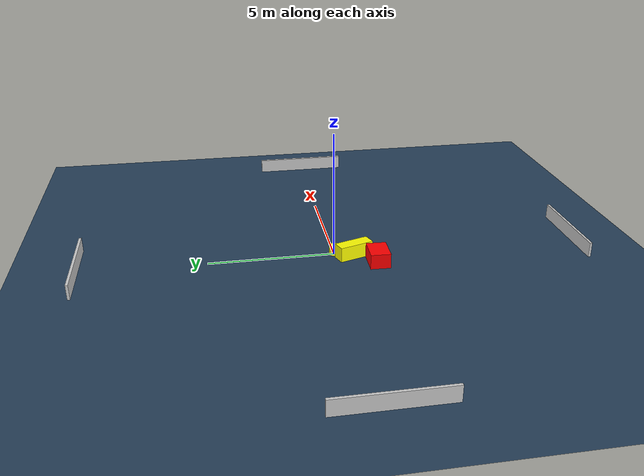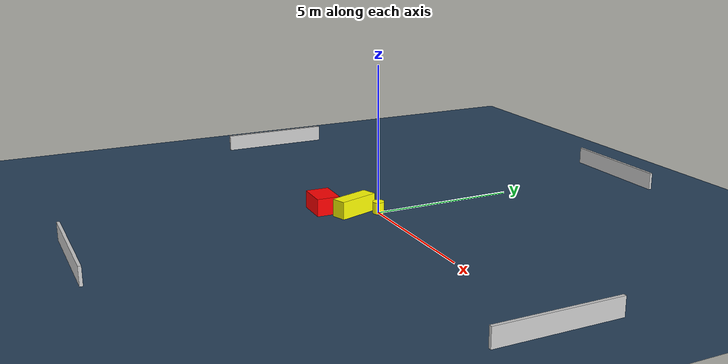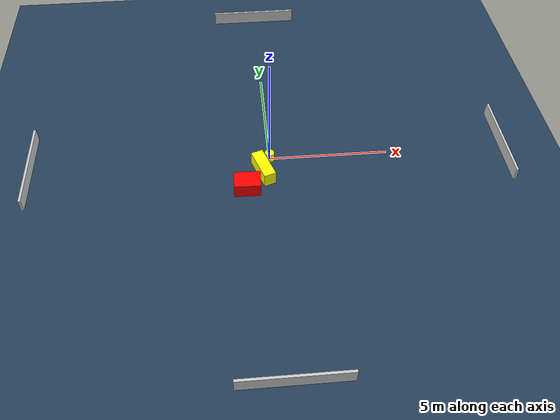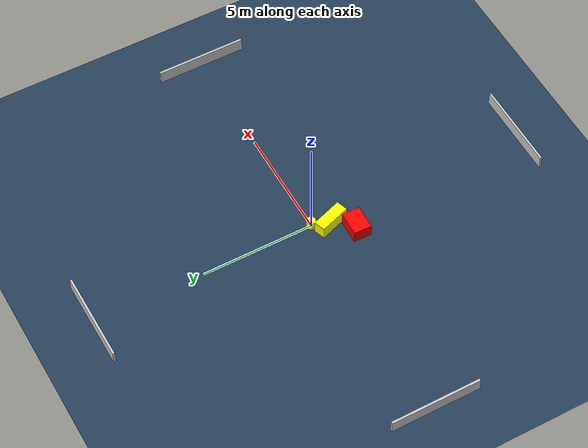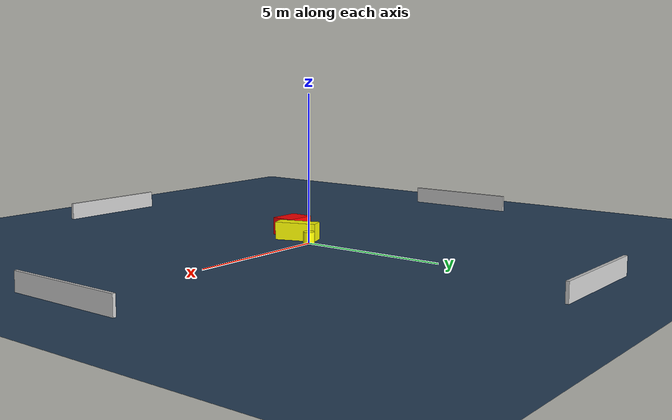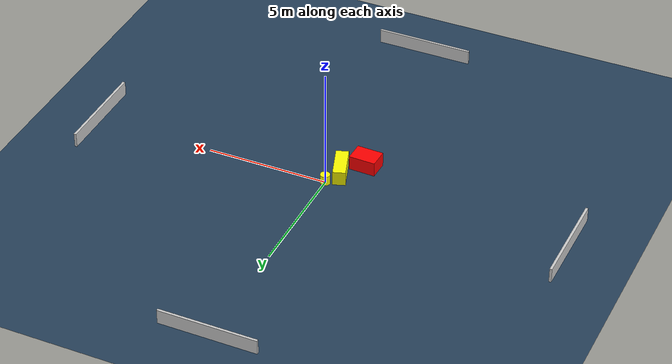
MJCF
<?xml version="1.0" ?>
<mujoco model="generated_environment">
  <option timestep="0.01" integrator="RK4" cone="elliptic"/>
  <default>
    <geom density="1"/>
  </default>
  <asset>
    <texture builtin="gradient" height="3072" name="skybox" rgb1="0.3 0.5 0.7" rgb2="0 0 0" type="skybox" width="512"/>
    <texture builtin="checker" height="300" name="groundplane" rgb1="0.2 0.3 0.4" rgb2="0.1 0.2 0.3" type="2d" width="300"/>
    <material name="groundplane" reflectance="0.2" texrepeat="5 5" texture="groundplane"/>
  </asset>
  <worldbody>
    <light dir="0 0 -1" directional="true" pos="0 0 1.5"/>
    <geom condim="3" friction="0.5 0.005 0.001" material="groundplane" name="floor" pos="0 0 0" size="0 0 0.05" type="plane"/>
    <body name="walls">
      <geom name="wall_1" condim="4" pos="-10.0 0.0 0.3" rgba="0.800000011920929 0.800000011920929 0.800000011920929 1.0" size="0.05 2.0 0.3" type="box"/>
      <geom name="wall_2" condim="4" pos="10.0 0.0 0.3" rgba="0.800000011920929 0.800000011920929 0.800000011920929 1.0" size="0.05 2.0 0.3" type="box"/>
      <geom name="wall_3" condim="4" pos="0.0 -10.0 0.3" rgba="0.800000011920929 0.800000011920929 0.800000011920929 1.0" size="2.0 0.05 0.3" type="box"/>
      <geom name="wall_4" condim="4" pos="0.0 10.0 0.3" rgba="0.800000011920929 0.800000011920929 0.800000011920929 1.0" size="2.0 0.05 0.3" type="box"/>
    </body>
    <body name="robot">
      <joint name="joint_x" type="slide" pos="0 0 0" axis="1 0 0"/>
      <joint name="joint_y" type="slide" pos="0 0 0" axis="0 1 0"/>
      <geom name="robot" type="cylinder" pos="0.0 0.0 0.2" size="0.2 0.2 0.0" mass="5.0" friction="1.0 0.005 0.0001" condim="4" rgba="1.0 1.0 0.0 1.0"/>
    </body>
    <body name="obstacle_1_movable">
      <geom name="obstacle_1_movable" condim="4" pos="-0.3162060765204621 -0.7535217935854689 0.3" euler="0 0 108.92600649623739" friction="0.0 0.005 0.001" rgba="1.0 1.0 0.0 1.0" size="0.7108793181952135 0.2559388989942739 0.3" type="box" mass="0.1"/>
      <joint type="free"/>
    </body>
    <body name="obstacle_2_static">
      <geom name="obstacle_2_static" condim="4" pos="-1.0339892062404428 -1.5825675462862083 0.3" euler="0 0 178.26765642994243" friction="0.0 0.005 0.001" rgba="1.0 0.0 0.0 1.0" size="0.5433222895288858 0.39748137719797916 0.3" type="box"/>
    </body>
  </worldbody>
  <actuator>
    <motor name="actuator_x" joint="joint_x" gear="1" ctrlrange="-1 1"/>
    <motor name="actuator_y" joint="joint_y" gear="1" ctrlrange="-1 1"/>
  </actuator>
</mujoco>
